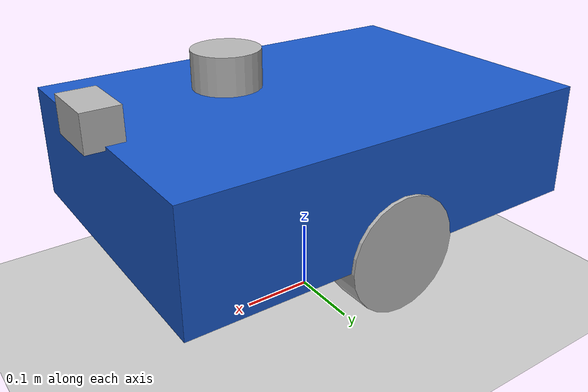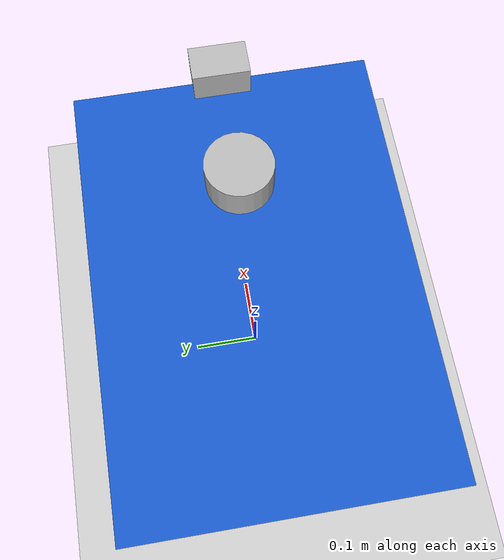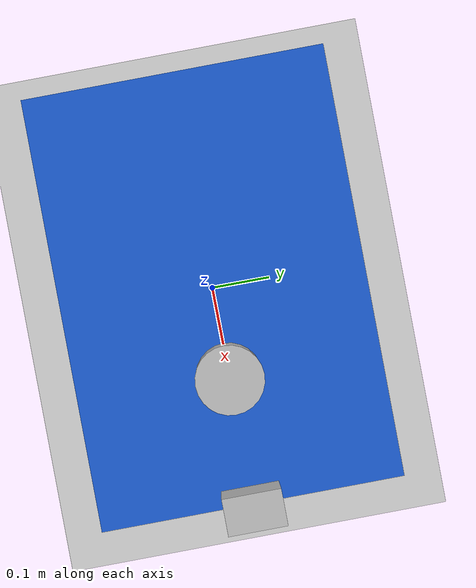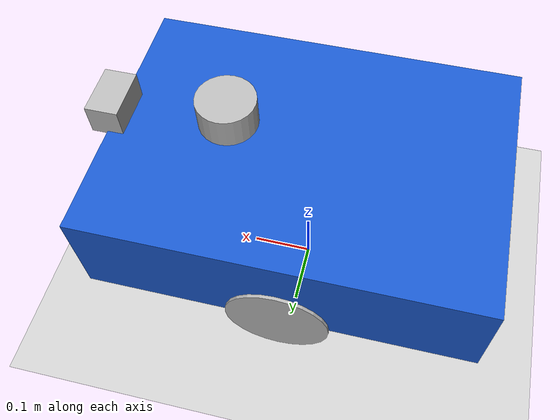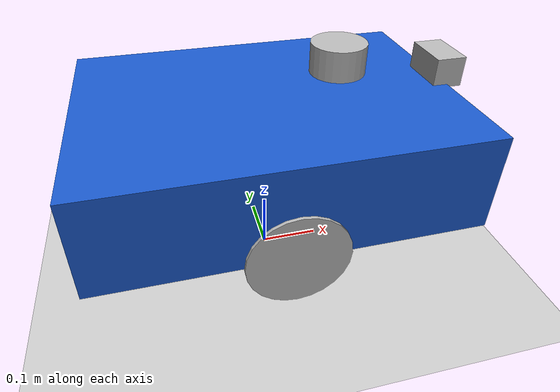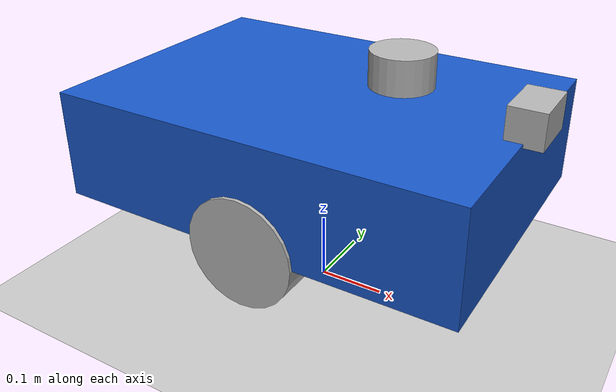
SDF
<?xml version="1.0"?>
<sdf version="1.10"><world name="warehouse_m08"><gravity>0 0 -9.8</gravity><plugin filename="gz-sim-physics-system" name="gz::sim::systems::Physics"/><plugin filename="gz-sim-user-commands-system" name="gz::sim::systems::UserCommands"/><plugin filename="gz-sim-scene-broadcaster-system" name="gz::sim::systems::SceneBroadcaster"/><light type="directional" name="sun"><pose>0 0 10 0 0 0</pose></light><model name="ground"><static>true</static><link name="link"><collision name="collision"><geometry><plane><normal>0 0 1</normal><size>30 30</size></plane></geometry></collision><visual name="visual"><geometry><plane><normal>0 0 1</normal><size>30 30</size></plane></geometry></visual></link></model><include><uri>model://agv</uri><name>agv</name><pose>0 0 0.08 0 0 0</pose></include></world></sdf>

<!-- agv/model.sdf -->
<sdf version="1.10">
  <model name="agv">
    <link name="base_link">
      <pose>0 0 0.16 0 0 0</pose>
      <inertial><mass>12.0</mass><inertia><ixx>0.20</ixx><iyy>0.40</iyy><izz>0.50</izz></inertia></inertial>
      <visual name="body"><geometry><box><size>0.60 0.42 0.16</size></box></geometry><material><diffuse>0.1 0.35 0.8 1</diffuse></material></visual>
      <collision name="body_collision"><geometry><box><size>0.60 0.42 0.16</size></box></geometry></collision>
      <sensor name="imu" type="imu"><topic>/imu/data</topic><always_on>true</always_on><update_rate>100</update_rate><imu><angular_velocity><x><noise type="gaussian"><mean>0</mean><stddev>0.001</stddev></noise></x></angular_velocity></imu></sensor>
    </link>
    <link name="left_wheel_link"><pose relative_to="base_link">0 0.19 -0.08 1.5708 0 0</pose><inertial><mass>0.6</mass><inertia><ixx>0.002</ixx><iyy>0.002</iyy><izz>0.001</izz></inertia></inertial><visual name="wheel"><geometry><cylinder><radius>0.08</radius><length>0.05</length></cylinder></geometry></visual><collision name="wheel_collision"><geometry><cylinder><radius>0.08</radius><length>0.05</length></cylinder></geometry><surface><friction><ode><mu>1.0</mu><mu2>1.0</mu2></ode></friction></surface></collision></link>
    <link name="right_wheel_link"><pose relative_to="base_link">0 -0.19 -0.08 1.5708 0 0</pose><inertial><mass>0.6</mass><inertia><ixx>0.002</ixx><iyy>0.002</iyy><izz>0.001</izz></inertia></inertial><visual name="wheel"><geometry><cylinder><radius>0.08</radius><length>0.05</length></cylinder></geometry></visual><collision name="wheel_collision"><geometry><cylinder><radius>0.08</radius><length>0.05</length></cylinder></geometry><surface><friction><ode><mu>1.0</mu><mu2>1.0</mu2></ode></friction></surface></collision></link>
    <joint name="left_wheel_joint" type="revolute"><parent>base_link</parent><child>left_wheel_link</child><axis><xyz>0 1 0</xyz><limit><lower>-1e16</lower><upper>1e16</upper></limit></axis></joint>
    <joint name="right_wheel_joint" type="revolute"><parent>base_link</parent><child>right_wheel_link</child><axis><xyz>0 1 0</xyz><limit><lower>-1e16</lower><upper>1e16</upper></limit></axis></joint>
    <link name="caster_link"><pose relative_to="base_link">-0.24 0 -0.12 0 0 0</pose><inertial><mass>0.15</mass><inertia><ixx>0.0001</ixx><iyy>0.0001</iyy><izz>0.0001</izz></inertia></inertial><visual name="caster"><geometry><sphere><radius>0.04</radius></sphere></geometry></visual><collision name="caster_collision"><geometry><sphere><radius>0.04</radius></sphere></geometry></collision></link>
    <joint name="caster_joint" type="fixed"><parent>base_link</parent><child>caster_link</child></joint>
    <link name="lidar_link"><pose relative_to="base_link">0.12 0 0.13 0 0 0</pose><visual name="housing"><geometry><cylinder><radius>0.045</radius><length>0.05</length></cylinder></geometry></visual><sensor name="lidar" type="gpu_lidar"><topic>/scan</topic><always_on>true</always_on><update_rate>10</update_rate><visualize>false</visualize><lidar><scan><horizontal><samples>720</samples><resolution>1</resolution><min_angle>-3.14159</min_angle><max_angle>3.14159</max_angle></horizontal></scan><range><min>0.12</min><max>12.0</max><resolution>0.01</resolution></range></lidar></sensor></link>
    <joint name="lidar_joint" type="fixed"><parent>base_link</parent><child>lidar_link</child></joint>
    <link name="camera_link"><pose relative_to="base_link">0.30 0 0.10 0 0 0</pose><visual name="housing"><geometry><box><size>0.05 0.08 0.05</size></box></geometry></visual><sensor name="camera" type="camera"><topic>/camera/image_raw</topic><always_on>true</always_on><update_rate>15</update_rate><camera><horizontal_fov>1.047</horizontal_fov><image><width>640</width><height>480</height><format>R8G8B8</format></image><clip><near>0.1</near><far>20</far></clip></camera></sensor></link>
    <joint name="camera_joint" type="fixed"><parent>base_link</parent><child>camera_link</child></joint>
    <plugin filename="gz-sim-diff-drive-system" name="gz::sim::systems::DiffDrive"><left_joint>left_wheel_joint</left_joint><right_joint>right_wheel_joint</right_joint><wheel_separation>0.38</wheel_separation><wheel_radius>0.08</wheel_radius><topic>/cmd_vel</topic><odom_topic>/odom</odom_topic><frame_id>odom</frame_id><child_frame_id>base_link</child_frame_id></plugin>
  </model>
</sdf>
